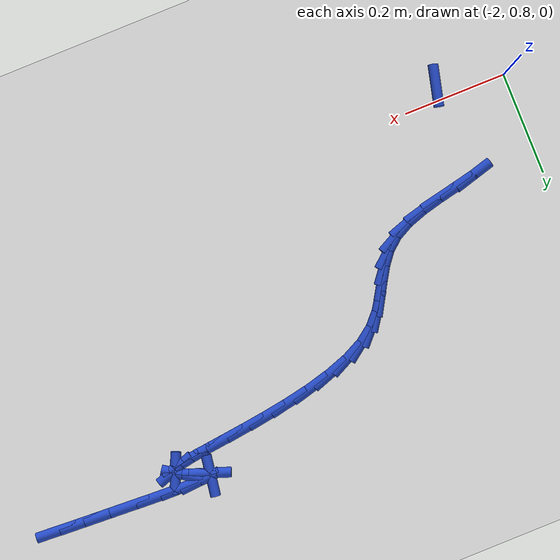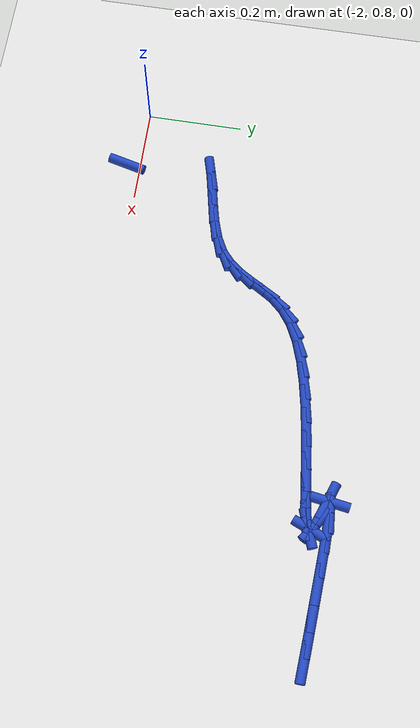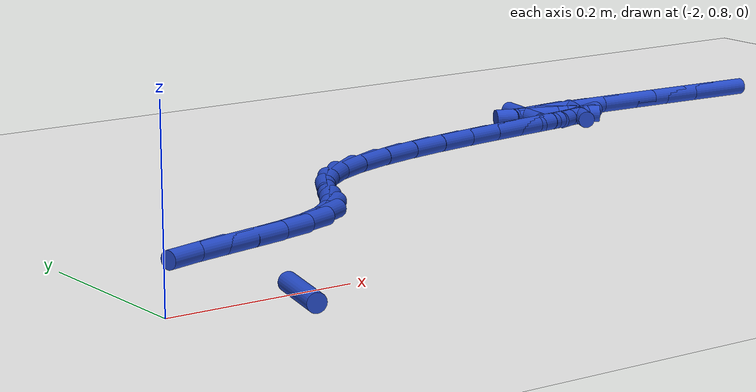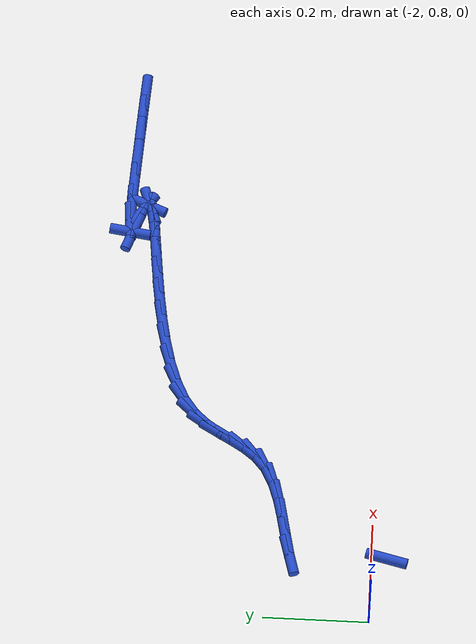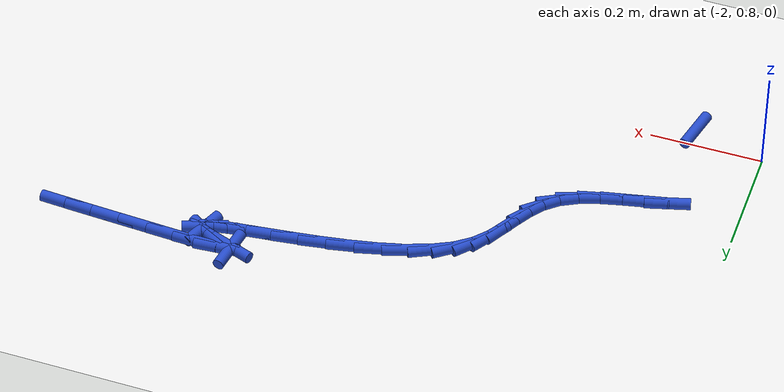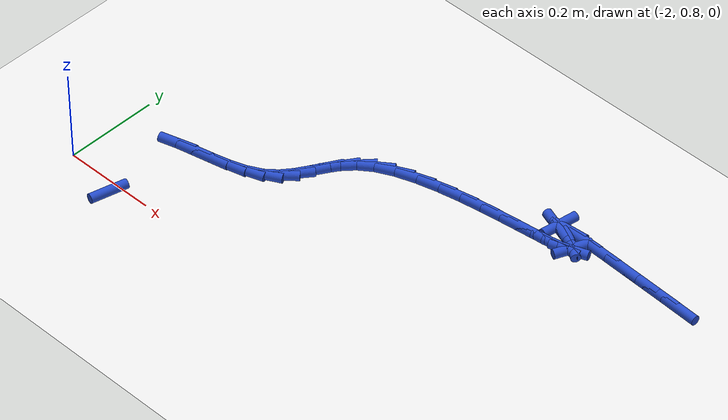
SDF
<sdf version="1.6">
 <world name="default">
  <model name="ground_plane">
   <static>1</static>
   <link name="link">
    <collision name="collision">
     <geometry><plane><normal>0 0 1</normal><size>100 100</size></plane></geometry>
     <surface><friction><ode><mu>100</mu><mu2>50</mu2></ode></friction></surface>
    </collision>
    <visual name="visual">
     <cast_shadows>0</cast_shadows>
     <geometry><plane><normal>0 0 1</normal><size>100 100</size></plane></geometry>
     <material>
      <script><uri>file://media/materials/scripts/gazebo.material</uri><name>Gazebo/WhiteGlow</name></script>
     </material>
    </visual>
   </link>
  </model>
  <model name="line">
   <link name="link_69">
    <pose>-0.8927258096094203 1.2846543463600775 0.01 0 1.57 -0.05728406918525061</pose>
    <collision name="collision">
     <geometry><cylinder><radius>0.01</radius><length>0.08</length></cylinder></geometry>
    </collision>
    <visual name="visual">
     <material>
      <script><name>Gazebo/Blue</name><uri>file://media/materials/scripts/gazebo.material</uri></script>
     </material>
     <geometry><cylinder><radius>0.01</radius><length>0.08</length></cylinder></geometry>
    </visual>
   </link>
   <link name="link_70">
    <pose>-0.9388991157780733 1.2873022381800392 0.01 0 1.57 -0.05104245725569193</pose>
    <collision name="collision">
     <geometry><cylinder><radius>0.01</radius><length>0.08</length></cylinder></geometry>
    </collision>
    <visual name="visual">
     <material>
      <script><name>Gazebo/Blue</name><uri>file://media/materials/scripts/gazebo.material</uri></script>
     </material>
     <geometry><cylinder><radius>0.01</radius><length>0.08</length></cylinder></geometry>
    </visual>
   </link>
   <link name="link_71">
    <pose>-0.9875923081196922 1.2897898190691617 0.01 0 1.57 -0.04978206733143617</pose>
    <collision name="collision">
     <geometry><cylinder><radius>0.01</radius><length>0.08</length></cylinder></geometry>
    </collision>
    <visual name="visual">
     <material>
      <script><name>Gazebo/Blue</name><uri>file://media/materials/scripts/gazebo.material</uri></script>
     </material>
     <geometry><cylinder><radius>0.01</radius><length>0.08</length></cylinder></geometry>
    </visual>
   </link>
   <link name="link_72">
    <pose>-1.038737007489423 1.2923380133090823 0.01 0 1.57 -0.05020717658423297</pose>
    <collision name="collision">
     <geometry><cylinder><radius>0.01</radius><length>0.08</length></cylinder></geometry>
    </collision>
    <visual name="visual">
     <material>
      <script><name>Gazebo/Blue</name><uri>file://media/materials/scripts/gazebo.material</uri></script>
     </material>
     <geometry><cylinder><radius>0.01</radius><length>0.08</length></cylinder></geometry>
    </visual>
   </link>
   <link name="link_73">
    <pose>-1.0911855852749217 1.2949735231842554 0.01 0 1.57 -0.0417640791201011</pose>
    <collision name="collision">
     <geometry><cylinder><radius>0.01</radius><length>0.08</length></cylinder></geometry>
    </collision>
    <visual name="visual">
     <material>
      <script><name>Gazebo/Blue</name><uri>file://media/materials/scripts/gazebo.material</uri></script>
     </material>
     <geometry><cylinder><radius>0.01</radius><length>0.08</length></cylinder></geometry>
    </visual>
   </link>
   <link name="link_74">
    <pose>-1.1398007630145084 1.2970050726199627 0.01 0 1.57 -0.014730425114433753</pose>
    <collision name="collision">
     <geometry><cylinder><radius>0.01</radius><length>0.08</length></cylinder></geometry>
    </collision>
    <visual name="visual">
     <material>
      <script><name>Gazebo/Blue</name><uri>file://media/materials/scripts/gazebo.material</uri></script>
     </material>
     <geometry><cylinder><radius>0.01</radius><length>0.08</length></cylinder></geometry>
    </visual>
   </link>
   <link name="link_75">
    <pose>-1.1785235682344721 1.297575517262464 0.01 0 1.57 0.07660397466082268</pose>
    <collision name="collision">
     <geometry><cylinder><radius>0.01</radius><length>0.08</length></cylinder></geometry>
    </collision>
    <visual name="visual">
     <material>
      <script><name>Gazebo/Blue</name><uri>file://media/materials/scripts/gazebo.material</uri></script>
     </material>
     <geometry><cylinder><radius>0.01</radius><length>0.08</length></cylinder></geometry>
    </visual>
   </link>
   <link name="link_76">
    <pose>-1.2012950284611015 1.295827712758019 0.01 0 1.57 1.417407422681616</pose>
    <collision name="collision">
     <geometry><cylinder><radius>0.01</radius><length>0.08</length></cylinder></geometry>
    </collision>
    <visual name="visual">
     <material>
      <script><name>Gazebo/Blue</name><uri>file://media/materials/scripts/gazebo.material</uri></script>
     </material>
     <geometry><cylinder><radius>0.01</radius><length>0.08</length></cylinder></geometry>
    </visual>
   </link>
   <link name="link_77">
    <pose>-1.202056171220686 1.2909045147528868 0.01 0 1.57 -0.3369684409657891</pose>
    <collision name="collision">
     <geometry><cylinder><radius>0.01</radius><length>0.08</length></cylinder></geometry>
    </collision>
    <visual name="visual">
     <material>
      <script><name>Gazebo/Blue</name><uri>file://media/materials/scripts/gazebo.material</uri></script>
     </material>
     <geometry><cylinder><radius>0.01</radius><length>0.08</length></cylinder></geometry>
    </visual>
   </link>
   <link name="link_78">
    <pose>-1.1776069640310076 1.2823392331884216 0.01 0 1.57 -0.33609467461101733</pose>
    <collision name="collision">
     <geometry><cylinder><radius>0.01</radius><length>0.08</length></cylinder></geometry>
    </collision>
    <visual name="visual">
     <material>
      <script><name>Gazebo/Blue</name><uri>file://media/materials/scripts/gazebo.material</uri></script>
     </material>
     <geometry><cylinder><radius>0.01</radius><length>0.08</length></cylinder></geometry>
    </visual>
   </link>
   <link name="link_79">
    <pose>-1.1519449479625414 1.2733742355996696 0.01 0 1.57 -0.5903008592595691</pose>
    <collision name="collision">
     <geometry><cylinder><radius>0.01</radius><length>0.08</length></cylinder></geometry>
    </collision>
    <visual name="visual">
     <material>
      <script><name>Gazebo/Blue</name><uri>file://media/materials/scripts/gazebo.material</uri></script>
     </material>
     <geometry><cylinder><radius>0.01</radius><length>0.08</length></cylinder></geometry>
    </visual>
   </link>
   <link name="link_80">
    <pose>-1.1410711649326697 1.2660888937297645 0.01 0 1.57 1.1670317731154</pose>
    <collision name="collision">
     <geometry><cylinder><radius>0.01</radius><length>0.08</length></cylinder></geometry>
    </collision>
    <visual name="visual">
     <material>
      <script><name>Gazebo/Blue</name><uri>file://media/materials/scripts/gazebo.material</uri></script>
     </material>
     <geometry><cylinder><radius>0.01</radius><length>0.08</length></cylinder></geometry>
    </visual>
   </link>
   <link name="link_81">
    <pose>-1.1436128139027044 1.2601398672434556 0.01 0 1.57 0.33862461294450813</pose>
    <collision name="collision">
     <geometry><cylinder><radius>0.01</radius><length>0.08</length></cylinder></geometry>
    </collision>
    <visual name="visual">
     <material>
      <script><name>Gazebo/Blue</name><uri>file://media/materials/scripts/gazebo.material</uri></script>
     </material>
     <geometry><cylinder><radius>0.01</radius><length>0.08</length></cylinder></geometry>
    </visual>
   </link>
   <link name="link_82">
    <pose>-1.1578301539507612 1.2551326602521653 0.01 0 1.57 0.18259246054484896</pose>
    <collision name="collision">
     <geometry><cylinder><radius>0.01</radius><length>0.08</length></cylinder></geometry>
    </collision>
    <visual name="visual">
     <material>
      <script><name>Gazebo/Blue</name><uri>file://media/materials/scripts/gazebo.material</uri></script>
     </material>
     <geometry><cylinder><radius>0.01</radius><length>0.08</length></cylinder></geometry>
    </visual>
   </link>
   <link name="link_83">
    <pose>-1.1819834441549562 1.2506727768673178 0.01 0 1.57 0.13236288670499563</pose>
    <collision name="collision">
     <geometry><cylinder><radius>0.01</radius><length>0.08</length></cylinder></geometry>
    </collision>
    <visual name="visual">
     <material>
      <script><name>Gazebo/Blue</name><uri>file://media/materials/scripts/gazebo.material</uri></script>
     </material>
     <geometry><cylinder><radius>0.01</radius><length>0.08</length></cylinder></geometry>
    </visual>
   </link>
   <link name="link_84">
    <pose>-1.2143329435934054 1.2463657212003356 0.01 0 1.57 0.11668465558571416</pose>
    <collision name="collision">
     <geometry><cylinder><radius>0.01</radius><length>0.08</length></cylinder></geometry>
    </collision>
    <visual name="visual">
     <material>
      <script><name>Gazebo/Blue</name><uri>file://media/materials/scripts/gazebo.material</uri></script>
     </material>
     <geometry><cylinder><radius>0.01</radius><length>0.08</length></cylinder></geometry>
    </visual>
   </link>
   <link name="link_85">
    <pose>-1.2531389113442237 1.241816997362643 0.01 0 1.57 0.11857185019744101</pose>
    <collision name="collision">
     <geometry><cylinder><radius>0.01</radius><length>0.08</length></cylinder></geometry>
    </collision>
    <visual name="visual">
     <material>
      <script><name>Gazebo/Blue</name><uri>file://media/materials/scripts/gazebo.material</uri></script>
     </material>
     <geometry><cylinder><radius>0.01</radius><length>0.08</length></cylinder></geometry>
    </visual>
   </link>
   <link name="link_86">
    <pose>-1.2966616064855288 1.2366321094656627 0.01 0 1.57 0.1328809389376914</pose>
    <collision name="collision">
     <geometry><cylinder><radius>0.01</radius><length>0.08</length></cylinder></geometry>
    </collision>
    <visual name="visual">
     <material>
      <script><name>Gazebo/Blue</name><uri>file://media/materials/scripts/gazebo.material</uri></script>
     </material>
     <geometry><cylinder><radius>0.01</radius><length>0.08</length></cylinder></geometry>
    </visual>
   </link>
   <link name="link_87">
    <pose>-1.3431612880954358 1.2304165616208187 0.01 0 1.57 0.15871235712532616</pose>
    <collision name="collision">
     <geometry><cylinder><radius>0.01</radius><length>0.08</length></cylinder></geometry>
    </collision>
    <visual name="visual">
     <material>
      <script><name>Gazebo/Blue</name><uri>file://media/materials/scripts/gazebo.material</uri></script>
     </material>
     <geometry><cylinder><radius>0.01</radius><length>0.08</length></cylinder></geometry>
    </visual>
   </link>
   <link name="link_88">
    <pose>-1.3908982152520608 1.2227758579395336 0.01 0 1.57 0.19766973059047946</pose>
    <collision name="collision">
     <geometry><cylinder><radius>0.01</radius><length>0.08</length></cylinder></geometry>
    </collision>
    <visual name="visual">
     <material>
      <script><name>Gazebo/Blue</name><uri>file://media/materials/scripts/gazebo.material</uri></script>
     </material>
     <geometry><cylinder><radius>0.01</radius><length>0.08</length></cylinder></geometry>
    </visual>
   </link>
   <link name="link_89">
    <pose>-1.4381326470335198 1.2133155025332314 0.01 0 1.57 0.25387942658614465</pose>
    <collision name="collision">
     <geometry><cylinder><radius>0.01</radius><length>0.08</length></cylinder></geometry>
    </collision>
    <visual name="visual">
     <material>
      <script><name>Gazebo/Blue</name><uri>file://media/materials/scripts/gazebo.material</uri></script>
     </material>
     <geometry><cylinder><radius>0.01</radius><length>0.08</length></cylinder></geometry>
    </visual>
   </link>
   <link name="link_90">
    <pose>-1.4831248425179284 1.2016409995133353 0.01 0 1.57 0.33514404656660646</pose>
    <collision name="collision">
     <geometry><cylinder><radius>0.01</radius><length>0.08</length></cylinder></geometry>
    </collision>
    <visual name="visual">
     <material>
      <script><name>Gazebo/Blue</name><uri>file://media/materials/scripts/gazebo.material</uri></script>
     </material>
     <geometry><cylinder><radius>0.01</radius><length>0.08</length></cylinder></geometry>
    </visual>
   </link>
   <link name="link_91">
    <pose>-1.524135060783402 1.187357852991268 0.01 0 1.57 0.4554995816886957</pose>
    <collision name="collision">
     <geometry><cylinder><radius>0.01</radius><length>0.08</length></cylinder></geometry>
    </collision>
    <visual name="visual">
     <material>
      <script><name>Gazebo/Blue</name><uri>file://media/materials/scripts/gazebo.material</uri></script>
     </material>
     <geometry><cylinder><radius>0.01</radius><length>0.08</length></cylinder></geometry>
    </visual>
   </link>
   <link name="link_92">
    <pose>-1.5594235609080571 1.1700715670784543 0.01 0 1.57 0.6356771876875369</pose>
    <collision name="collision">
     <geometry><cylinder><radius>0.01</radius><length>0.08</length></cylinder></geometry>
    </collision>
    <visual name="visual">
     <material>
      <script><name>Gazebo/Blue</name><uri>file://media/materials/scripts/gazebo.material</uri></script>
     </material>
     <geometry><cylinder><radius>0.01</radius><length>0.08</length></cylinder></geometry>
    </visual>
   </link>
   <link name="link_93">
    <pose>-1.5873853821970494 1.1494400436882937 0.01 0 1.57 0.8359757070056458</pose>
    <collision name="collision">
     <geometry><cylinder><radius>0.01</radius><length>0.08</length></cylinder></geometry>
    </collision>
    <visual name="visual">
     <material>
      <script><name>Gazebo/Blue</name><uri>file://media/materials/scripts/gazebo.material</uri></script>
     </material>
     <geometry><cylinder><radius>0.01</radius><length>0.08</length></cylinder></geometry>
    </visual>
   </link>
   <link name="link_94">
    <pose>-1.6085951123489772 1.1259685163319173 0.01 0 1.57 0.981396680988797</pose>
    <collision name="collision">
     <geometry><cylinder><radius>0.01</radius><length>0.08</length></cylinder></geometry>
    </collision>
    <visual name="visual">
     <material>
      <script><name>Gazebo/Blue</name><uri>file://media/materials/scripts/gazebo.material</uri></script>
     </material>
     <geometry><cylinder><radius>0.01</radius><length>0.08</length></cylinder></geometry>
    </visual>
   </link>
   <link name="link_95">
    <pose>-1.6253925483927911 1.100848469693733 0.01 0 1.57 1.046606365968844</pose>
    <collision name="collision">
     <geometry><cylinder><radius>0.01</radius><length>0.08</length></cylinder></geometry>
    </collision>
    <visual name="visual">
     <material>
      <script><name>Gazebo/Blue</name><uri>file://media/materials/scripts/gazebo.material</uri></script>
     </material>
     <geometry><cylinder><radius>0.01</radius><length>0.08</length></cylinder></geometry>
    </visual>
   </link>
   <link name="link_96">
    <pose>-1.6401682431916673 1.0752911205376194 0.01 0 1.57 1.0222741297266655</pose>
    <collision name="collision">
     <geometry><cylinder><radius>0.01</radius><length>0.08</length></cylinder></geometry>
    </collision>
    <visual name="visual">
     <material>
      <script><name>Gazebo/Blue</name><uri>file://media/materials/scripts/gazebo.material</uri></script>
     </material>
     <geometry><cylinder><radius>0.01</radius><length>0.08</length></cylinder></geometry>
    </visual>
   </link>
   <link name="link_97">
    <pose>-1.6553127496087823 1.0505076856274547 0.01 0 1.57 0.9050734480316663</pose>
    <collision name="collision">
     <geometry><cylinder><radius>0.01</radius><length>0.08</length></cylinder></geometry>
    </collision>
    <visual name="visual">
     <material>
      <script><name>Gazebo/Blue</name><uri>file://media/materials/scripts/gazebo.material</uri></script>
     </material>
     <geometry><cylinder><radius>0.01</radius><length>0.08</length></cylinder></geometry>
    </visual>
   </link>
   <link name="link_98">
    <pose>-1.6732166205073136 1.027709381727118 0.01 0 1.57 0.7046510842376492</pose>
    <collision name="collision">
     <geometry><cylinder><radius>0.01</radius><length>0.08</length></cylinder></geometry>
    </collision>
    <visual name="visual">
     <material>
      <script><name>Gazebo/Blue</name><uri>file://media/materials/scripts/gazebo.material</uri></script>
     </material>
     <geometry><cylinder><radius>0.01</radius><length>0.08</length></cylinder></geometry>
    </visual>
   </link>
   <link name="link_99">
    <pose>-1.6962704087504359 1.0081074256004858 0.01 0 1.57 0.4764641379620919</pose>
    <collision name="collision">
     <geometry><cylinder><radius>0.01</radius><length>0.08</length></cylinder></geometry>
    </collision>
    <visual name="visual">
     <material>
      <script><name>Gazebo/Blue</name><uri>file://media/materials/scripts/gazebo.material</uri></script>
     </material>
     <geometry><cylinder><radius>0.01</radius><length>0.08</length></cylinder></geometry>
    </visual>
   </link>
   <link name="link_100">
    <pose>-1.7262516789052067 0.9926333462417142 0.01 0 1.57 0.32503409464002153</pose>
    <collision name="collision">
     <geometry><cylinder><radius>0.01</radius><length>0.08</length></cylinder></geometry>
    </collision>
    <visual name="visual">
     <material>
      <script><name>Gazebo/Blue</name><uri>file://media/materials/scripts/gazebo.material</uri></script>
     </material>
     <geometry><cylinder><radius>0.01</radius><length>0.08</length></cylinder></geometry>
    </visual>
   </link>
   <link name="link_101">
    <pose>-1.7616325483368314 0.9807104984079039 0.01 0 1.57 0.24296675807324186</pose>
    <collision name="collision">
     <geometry><cylinder><radius>0.01</radius><length>0.08</length></cylinder></geometry>
    </collision>
    <visual name="visual">
     <material>
      <script><name>Gazebo/Blue</name><uri>file://media/materials/scripts/gazebo.material</uri></script>
     </material>
     <geometry><cylinder><radius>0.01</radius><length>0.08</length></cylinder></geometry>
    </visual>
   </link>
   <link name="link_102">
    <pose>-1.7997759419207129 0.9712561463228911 0.01 0 1.57 0.20780988566562145</pose>
    <collision name="collision">
     <geometry><cylinder><radius>0.01</radius><length>0.08</length></cylinder></geometry>
    </collision>
    <visual name="visual">
     <material>
      <script><name>Gazebo/Blue</name><uri>file://media/materials/scripts/gazebo.material</uri></script>
     </material>
     <geometry><cylinder><radius>0.01</radius><length>0.08</length></cylinder></geometry>
    </visual>
   </link>
   <link name="link_103">
    <pose>-1.8380439712767156 0.963187183146941 0.01 0 1.57 0.21389786495947805</pose>
    <collision name="collision">
     <geometry><cylinder><radius>0.01</radius><length>0.08</length></cylinder></geometry>
    </collision>
    <visual name="visual">
     <material>
      <script><name>Gazebo/Blue</name><uri>file://media/materials/scripts/gazebo.material</uri></script>
     </material>
     <geometry><cylinder><radius>0.01</radius><length>0.08</length></cylinder></geometry>
    </visual>
   </link>
   <link name="link_104">
    <pose>-1.8737987480247076 0.9554205020403188 0.01 0 1.57 0.2723567597740591</pose>
    <collision name="collision">
     <geometry><cylinder><radius>0.01</radius><length>0.08</length></cylinder></geometry>
    </collision>
    <visual name="visual">
     <material>
      <script><name>Gazebo/Blue</name><uri>file://media/materials/scripts/gazebo.material</uri></script>
     </material>
     <geometry><cylinder><radius>0.01</radius><length>0.08</length></cylinder></geometry>
    </visual>
   </link>
   <link name="link_113">
    <pose>-1.872137662938603 0.7721184109511037 0.01 0 1.57 1.3285309605505307</pose>
    <collision name="collision">
     <geometry><cylinder><radius>0.01</radius><length>0.08</length></cylinder></geometry>
    </collision>
    <visual name="visual">
     <material>
      <script><name>Gazebo/Blue</name><uri>file://media/materials/scripts/gazebo.material</uri></script>
     </material>
     <geometry><cylinder><radius>0.01</radius><length>0.08</length></cylinder></geometry>
    </visual>
   </link>
  </model>
 </world>
</sdf>
